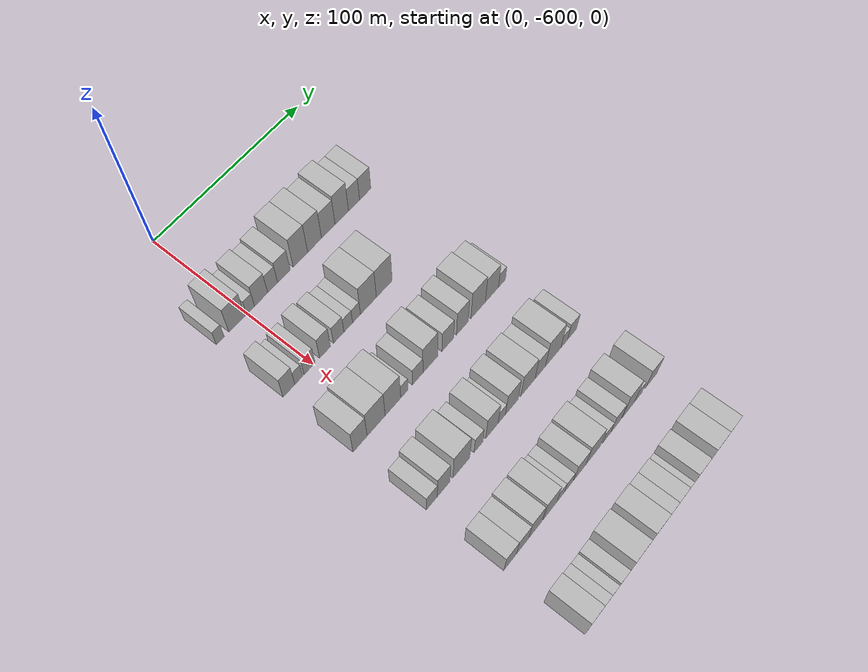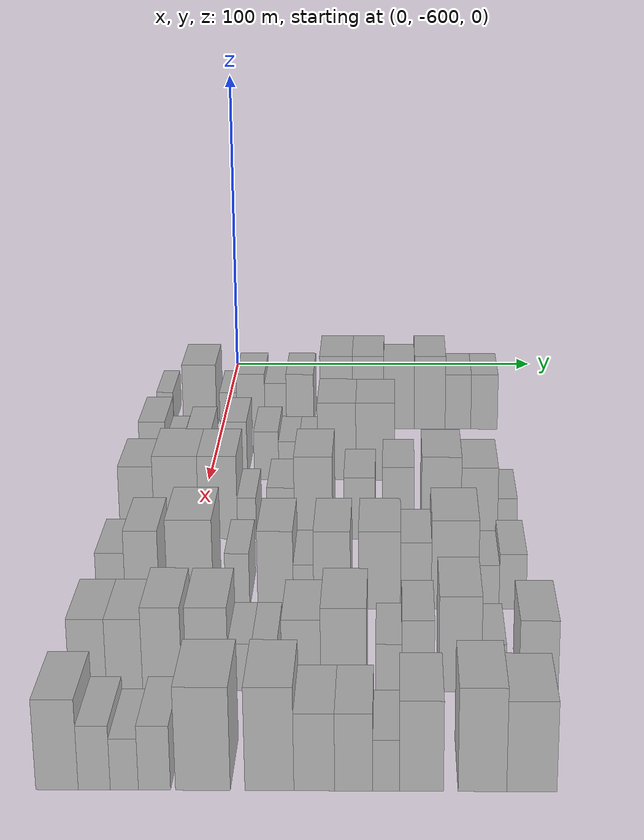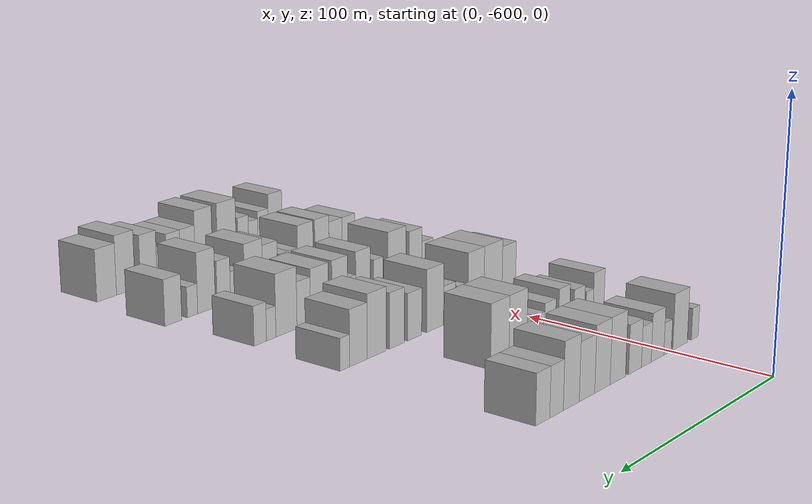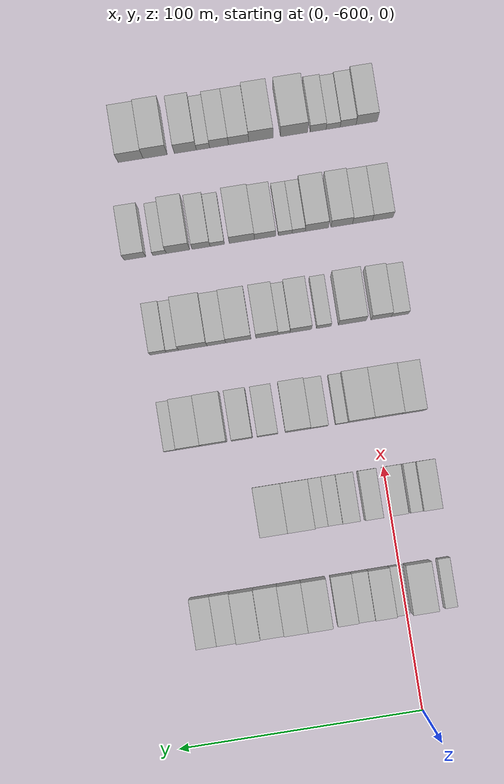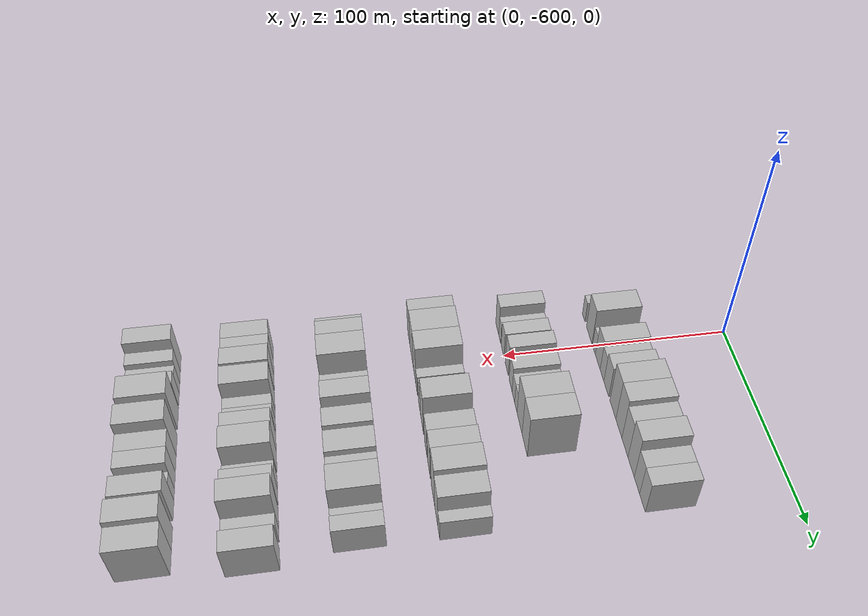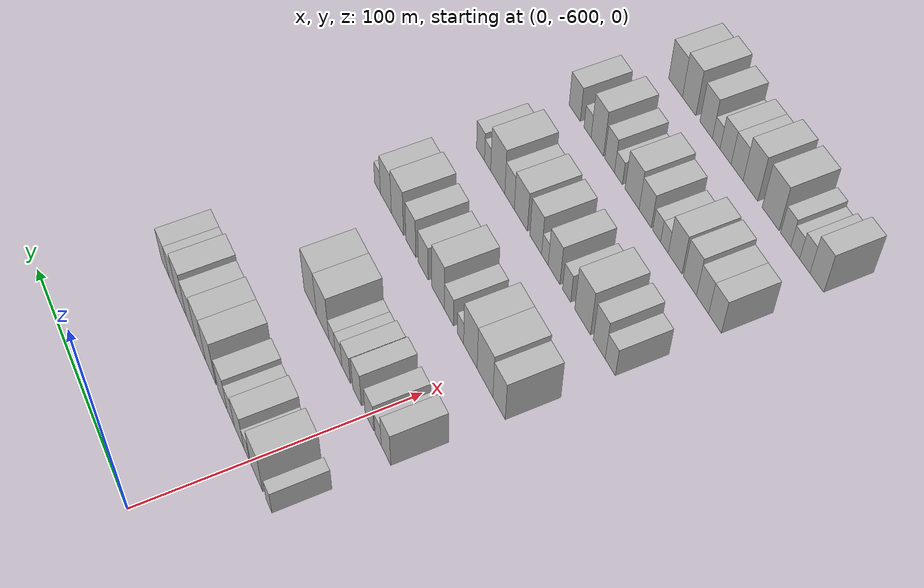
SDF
<sdf version="1.6">
 <world name="default">
  <model name="building_1">
   <static>1</static>
   <pose>50.0000 -617.4628 0 0.000000 0.000000 0.000000</pose>
   <link name="link">
    <pose>0 0 6.00 0 0 0</pose>
    <collision name="collision"><geometry><box><size>20.0000 5.0744 12.0000</size></box></geometry></collision>
    <visual name="visual">
     <cast_shadows>0</cast_shadows>
     <geometry><box><size>20.0000 5.0744 12.0000</size></box></geometry>
     <material>
      <script>
       <uri>model://HANNAS_wall/materials/scripts</uri>
       <uri>model://HANNAS_wall/materials/textures</uri>
       <name>vrc/HANNAS_wall</name>
      </script>
     </material>
    </visual>
   </link>
  </model>
  <model name="building_2">
   <static>1</static>
   <pose>50.0000 -606.7021 0 0.000000 0.000000 0.000000</pose>
   <link name="link">
    <pose>0 0 10.50 0 0 0</pose>
    <collision name="collision"><geometry><box><size>20.0000 10.4470 21.0000</size></box></geometry></collision>
    <visual name="visual">
     <cast_shadows>0</cast_shadows>
     <geometry><box><size>20.0000 10.4470 21.0000</size></box></geometry>
     <material>
      <script>
       <uri>model://HANNAS_wall/materials/scripts</uri>
       <uri>model://HANNAS_wall/materials/textures</uri>
       <name>vrc/HANNAS_wall</name>
      </script>
     </material>
    </visual>
   </link>
  </model>
  <model name="building_3">
   <static>1</static>
   <pose>50.0000 -597.8250 0 0.000000 0.000000 0.000000</pose>
   <link name="link">
    <pose>0 0 6.00 0 0 0</pose>
    <collision name="collision"><geometry><box><size>20.0000 5.3073 12.0000</size></box></geometry></collision>
    <visual name="visual">
     <cast_shadows>0</cast_shadows>
     <geometry><box><size>20.0000 5.3073 12.0000</size></box></geometry>
     <material>
      <script>
       <uri>model://HANNAS_wall/materials/scripts</uri>
       <uri>model://HANNAS_wall/materials/textures</uri>
       <name>vrc/HANNAS_wall</name>
      </script>
     </material>
    </visual>
   </link>
  </model>
  <model name="building_4">
   <static>1</static>
   <pose>50.0000 -590.8013 0 0.000000 0.000000 0.000000</pose>
   <link name="link">
    <pose>0 0 9.00 0 0 0</pose>
    <collision name="collision"><geometry><box><size>20.0000 8.7400 18.0000</size></box></geometry></collision>
    <visual name="visual">
     <cast_shadows>0</cast_shadows>
     <geometry><box><size>20.0000 8.7400 18.0000</size></box></geometry>
     <material>
      <script>
       <uri>model://HANNAS_wall/materials/scripts</uri>
       <uri>model://HANNAS_wall/materials/textures</uri>
       <name>vrc/HANNAS_wall</name>
      </script>
     </material>
    </visual>
   </link>
  </model>
  <model name="building_5">
   <static>1</static>
   <pose>50.0000 -583.0864 0 0.000000 0.000000 0.000000</pose>
   <link name="link">
    <pose>0 0 7.50 0 0 0</pose>
    <collision name="collision"><geometry><box><size>20.0000 6.6898 15.0000</size></box></geometry></collision>
    <visual name="visual">
     <cast_shadows>0</cast_shadows>
     <geometry><box><size>20.0000 6.6898 15.0000</size></box></geometry>
     <material>
      <script>
       <uri>model://HANNAS_wall/materials/scripts</uri>
       <uri>model://HANNAS_wall/materials/textures</uri>
       <name>vrc/HANNAS_wall</name>
      </script>
     </material>
    </visual>
   </link>
  </model>
  <model name="building_6">
   <static>1</static>
   <pose>50.0000 -575.4797 0 0.000000 0.000000 0.000000</pose>
   <link name="link">
    <pose>0 0 9.00 0 0 0</pose>
    <collision name="collision"><geometry><box><size>20.0000 8.5235 18.0000</size></box></geometry></collision>
    <visual name="visual">
     <cast_shadows>0</cast_shadows>
     <geometry><box><size>20.0000 8.5235 18.0000</size></box></geometry>
     <material>
      <script>
       <uri>model://HANNAS_wall/materials/scripts</uri>
       <uri>model://HANNAS_wall/materials/textures</uri>
       <name>vrc/HANNAS_wall</name>
      </script>
     </material>
    </visual>
   </link>
  </model>
  <model name="building_7">
   <static>1</static>
   <pose>50.0000 -564.1815 0 0.000000 0.000000 0.000000</pose>
   <link name="link">
    <pose>0 0 12.00 0 0 0</pose>
    <collision name="collision"><geometry><box><size>20.0000 10.0730 24.0000</size></box></geometry></collision>
    <visual name="visual">
     <cast_shadows>0</cast_shadows>
     <geometry><box><size>20.0000 10.0730 24.0000</size></box></geometry>
     <material>
      <script>
       <uri>model://HANNAS_wall/materials/scripts</uri>
       <uri>model://HANNAS_wall/materials/textures</uri>
       <name>vrc/HANNAS_wall</name>
      </script>
     </material>
    </visual>
   </link>
  </model>
  <model name="building_8">
   <static>1</static>
   <pose>50.0000 -554.2850 0 0.000000 0.000000 0.000000</pose>
   <link name="link">
    <pose>0 0 12.00 0 0 0</pose>
    <collision name="collision"><geometry><box><size>20.0000 9.7198 24.0000</size></box></geometry></collision>
    <visual name="visual">
     <cast_shadows>0</cast_shadows>
     <geometry><box><size>20.0000 9.7198 24.0000</size></box></geometry>
     <material>
      <script>
       <uri>model://HANNAS_wall/materials/scripts</uri>
       <uri>model://HANNAS_wall/materials/textures</uri>
       <name>vrc/HANNAS_wall</name>
      </script>
     </material>
    </visual>
   </link>
  </model>
  <model name="building_9">
   <static>1</static>
   <pose>50.0000 -544.6544 0 0.000000 0.000000 0.000000</pose>
   <link name="link">
    <pose>0 0 10.50 0 0 0</pose>
    <collision name="collision"><geometry><box><size>20.0000 9.5414 21.0000</size></box></geometry></collision>
    <visual name="visual">
     <cast_shadows>0</cast_shadows>
     <geometry><box><size>20.0000 9.5414 21.0000</size></box></geometry>
     <material>
      <script>
       <uri>model://HANNAS_wall/materials/scripts</uri>
       <uri>model://HANNAS_wall/materials/textures</uri>
       <name>vrc/HANNAS_wall</name>
      </script>
     </material>
    </visual>
   </link>
  </model>
  <model name="building_10">
   <static>1</static>
   <pose>50.0000 -535.0592 0 0.000000 0.000000 0.000000</pose>
   <link name="link">
    <pose>0 0 12.00 0 0 0</pose>
    <collision name="collision"><geometry><box><size>20.0000 9.6490 24.0000</size></box></geometry></collision>
    <visual name="visual">
     <cast_shadows>0</cast_shadows>
     <geometry><box><size>20.0000 9.6490 24.0000</size></box></geometry>
     <material>
      <script>
       <uri>model://HANNAS_wall/materials/scripts</uri>
       <uri>model://HANNAS_wall/materials/textures</uri>
       <name>vrc/HANNAS_wall</name>
      </script>
     </material>
    </visual>
   </link>
  </model>
  <model name="building_11">
   <static>1</static>
   <pose>50.0000 -526.2334 0 0.000000 0.000000 0.000000</pose>
   <link name="link">
    <pose>0 0 9.00 0 0 0</pose>
    <collision name="collision"><geometry><box><size>20.0000 8.0027 18.0000</size></box></geometry></collision>
    <visual name="visual">
     <cast_shadows>0</cast_shadows>
     <geometry><box><size>20.0000 8.0027 18.0000</size></box></geometry>
     <material>
      <script>
       <uri>model://HANNAS_wall/materials/scripts</uri>
       <uri>model://HANNAS_wall/materials/textures</uri>
       <name>vrc/HANNAS_wall</name>
      </script>
     </material>
    </visual>
   </link>
  </model>
  <model name="building_12">
   <static>1</static>
   <pose>50.0000 -518.0993 0 0.000000 0.000000 0.000000</pose>
   <link name="link">
    <pose>0 0 9.00 0 0 0</pose>
    <collision name="collision"><geometry><box><size>20.0000 8.2655 18.0000</size></box></geometry></collision>
    <visual name="visual">
     <cast_shadows>0</cast_shadows>
     <geometry><box><size>20.0000 8.2655 18.0000</size></box></geometry>
     <material>
      <script>
       <uri>model://HANNAS_wall/materials/scripts</uri>
       <uri>model://HANNAS_wall/materials/textures</uri>
       <name>vrc/HANNAS_wall</name>
      </script>
     </material>
    </visual>
   </link>
  </model>
  <model name="building_145">
   <static>1</static>
   <pose>90.0000 -616.1859 0 0.000000 0.000000 0.000000</pose>
   <link name="link">
    <pose>0 0 9.00 0 0 0</pose>
    <collision name="collision"><geometry><box><size>20.0000 7.6283 18.0000</size></box></geometry></collision>
    <visual name="visual">
     <cast_shadows>0</cast_shadows>
     <geometry><box><size>20.0000 7.6283 18.0000</size></box></geometry>
     <material>
      <script>
       <uri>model://HANNAS_wall/materials/scripts</uri>
       <uri>model://HANNAS_wall/materials/textures</uri>
       <name>vrc/HANNAS_wall</name>
      </script>
     </material>
    </visual>
   </link>
  </model>
  <model name="building_146">
   <static>1</static>
   <pose>90.0000 -609.8628 0 0.000000 0.000000 0.000000</pose>
   <link name="link">
    <pose>0 0 6.00 0 0 0</pose>
    <collision name="collision"><geometry><box><size>20.0000 5.0178 12.0000</size></box></geometry></collision>
    <visual name="visual">
     <cast_shadows>0</cast_shadows>
     <geometry><box><size>20.0000 5.0178 12.0000</size></box></geometry>
     <material>
      <script>
       <uri>model://HANNAS_wall/materials/scripts</uri>
       <uri>model://HANNAS_wall/materials/textures</uri>
       <name>vrc/HANNAS_wall</name>
      </script>
     </material>
    </visual>
   </link>
  </model>
  <model name="building_147">
   <static>1</static>
   <pose>90.0000 -602.7321 0 0.000000 0.000000 0.000000</pose>
   <link name="link">
    <pose>0 0 7.50 0 0 0</pose>
    <collision name="collision"><geometry><box><size>20.0000 7.2435 15.0000</size></box></geometry></collision>
    <visual name="visual">
     <cast_shadows>0</cast_shadows>
     <geometry><box><size>20.0000 7.2435 15.0000</size></box></geometry>
     <material>
      <script>
       <uri>model://HANNAS_wall/materials/scripts</uri>
       <uri>model://HANNAS_wall/materials/textures</uri>
       <name>vrc/HANNAS_wall</name>
      </script>
     </material>
    </visual>
   </link>
  </model>
  <model name="building_148">
   <static>1</static>
   <pose>90.0000 -592.4602 0 0.000000 0.000000 0.000000</pose>
   <link name="link">
    <pose>0 0 9.00 0 0 0</pose>
    <collision name="collision"><geometry><box><size>20.0000 7.3004 18.0000</size></box></geometry></collision>
    <visual name="visual">
     <cast_shadows>0</cast_shadows>
     <geometry><box><size>20.0000 7.3004 18.0000</size></box></geometry>
     <material>
      <script>
       <uri>model://HANNAS_wall/materials/scripts</uri>
       <uri>model://HANNAS_wall/materials/textures</uri>
       <name>vrc/HANNAS_wall</name>
      </script>
     </material>
    </visual>
   </link>
  </model>
  <model name="building_149">
   <static>1</static>
   <pose>90.0000 -583.2469 0 0.000000 0.000000 0.000000</pose>
   <link name="link">
    <pose>0 0 7.50 0 0 0</pose>
    <collision name="collision"><geometry><box><size>20.0000 7.1262 15.0000</size></box></geometry></collision>
    <visual name="visual">
     <cast_shadows>0</cast_shadows>
     <geometry><box><size>20.0000 7.1262 15.0000</size></box></geometry>
     <material>
      <script>
       <uri>model://HANNAS_wall/materials/scripts</uri>
       <uri>model://HANNAS_wall/materials/textures</uri>
       <name>vrc/HANNAS_wall</name>
      </script>
     </material>
    </visual>
   </link>
  </model>
  <model name="building_150">
   <static>1</static>
   <pose>90.0000 -576.7328 0 0.000000 0.000000 0.000000</pose>
   <link name="link">
    <pose>0 0 6.00 0 0 0</pose>
    <collision name="collision"><geometry><box><size>20.0000 5.9021 12.0000</size></box></geometry></collision>
    <visual name="visual">
     <cast_shadows>0</cast_shadows>
     <geometry><box><size>20.0000 5.9021 12.0000</size></box></geometry>
     <material>
      <script>
       <uri>model://HANNAS_wall/materials/scripts</uri>
       <uri>model://HANNAS_wall/materials/textures</uri>
       <name>vrc/HANNAS_wall</name>
      </script>
     </material>
    </visual>
   </link>
  </model>
  <model name="building_151">
   <static>1</static>
   <pose>90.0000 -571.0724 0 0.000000 0.000000 0.000000</pose>
   <link name="link">
    <pose>0 0 6.00 0 0 0</pose>
    <collision name="collision"><geometry><box><size>20.0000 5.4186 12.0000</size></box></geometry></collision>
    <visual name="visual">
     <cast_shadows>0</cast_shadows>
     <geometry><box><size>20.0000 5.4186 12.0000</size></box></geometry>
     <material>
      <script>
       <uri>model://HANNAS_wall/materials/scripts</uri>
       <uri>model://HANNAS_wall/materials/textures</uri>
       <name>vrc/HANNAS_wall</name>
      </script>
     </material>
    </visual>
   </link>
  </model>
  <model name="building_152">
   <static>1</static>
   <pose>90.0000 -562.8114 0 0.000000 0.000000 0.000000</pose>
   <link name="link">
    <pose>0 0 12.00 0 0 0</pose>
    <collision name="collision"><geometry><box><size>20.0000 11.1035 24.0000</size></box></geometry></collision>
    <visual name="visual">
     <cast_shadows>0</cast_shadows>
     <geometry><box><size>20.0000 11.1035 24.0000</size></box></geometry>
     <material>
      <script>
       <uri>model://HANNAS_wall/materials/scripts</uri>
       <uri>model://HANNAS_wall/materials/textures</uri>
       <name>vrc/HANNAS_wall</name>
      </script>
     </material>
    </visual>
   </link>
  </model>
  <model name="building_153">
   <static>1</static>
   <pose>90.0000 -551.6651 0 0.000000 0.000000 0.000000</pose>
   <link name="link">
    <pose>0 0 12.00 0 0 0</pose>
    <collision name="collision"><geometry><box><size>20.0000 11.1890 24.0000</size></box></geometry></collision>
    <visual name="visual">
     <cast_shadows>0</cast_shadows>
     <geometry><box><size>20.0000 11.1890 24.0000</size></box></geometry>
     <material>
      <script>
       <uri>model://HANNAS_wall/materials/scripts</uri>
       <uri>model://HANNAS_wall/materials/textures</uri>
       <name>vrc/HANNAS_wall</name>
      </script>
     </material>
    </visual>
   </link>
  </model>
  <model name="building_279">
   <static>1</static>
   <pose>130.0000 -615.3930 0 0.000000 0.000000 0.000000</pose>
   <link name="link">
    <pose>0 0 10.50 0 0 0</pose>
    <collision name="collision"><geometry><box><size>20.0000 9.2139 21.0000</size></box></geometry></collision>
    <visual name="visual">
     <cast_shadows>0</cast_shadows>
     <geometry><box><size>20.0000 9.2139 21.0000</size></box></geometry>
     <material>
      <script>
       <uri>model://HANNAS_wall/materials/scripts</uri>
       <uri>model://HANNAS_wall/materials/textures</uri>
       <name>vrc/HANNAS_wall</name>
      </script>
     </material>
    </visual>
   </link>
  </model>
  <model name="building_280">
   <static>1</static>
   <pose>130.0000 -604.7932 0 0.000000 0.000000 0.000000</pose>
   <link name="link">
    <pose>0 0 12.00 0 0 0</pose>
    <collision name="collision"><geometry><box><size>20.0000 11.9857 24.0000</size></box></geometry></collision>
    <visual name="visual">
     <cast_shadows>0</cast_shadows>
     <geometry><box><size>20.0000 11.9857 24.0000</size></box></geometry>
     <material>
      <script>
       <uri>model://HANNAS_wall/materials/scripts</uri>
       <uri>model://HANNAS_wall/materials/textures</uri>
       <name>vrc/HANNAS_wall</name>
      </script>
     </material>
    </visual>
   </link>
  </model>
  <model name="building_281">
   <static>1</static>
   <pose>130.0000 -593.5630 0 0.000000 0.000000 0.000000</pose>
   <link name="link">
    <pose>0 0 12.00 0 0 0</pose>
    <collision name="collision"><geometry><box><size>20.0000 10.4748 24.0000</size></box></geometry></collision>
    <visual name="visual">
     <cast_shadows>0</cast_shadows>
     <geometry><box><size>20.0000 10.4748 24.0000</size></box></geometry>
     <material>
      <script>
       <uri>model://HANNAS_wall/materials/scripts</uri>
       <uri>model://HANNAS_wall/materials/textures</uri>
       <name>vrc/HANNAS_wall</name>
      </script>
     </material>
    </visual>
   </link>
  </model>
  <model name="building_282">
   <static>1</static>
   <pose>130.0000 -585.8047 0 0.000000 0.000000 0.000000</pose>
   <link name="link">
    <pose>0 0 6.00 0 0 0</pose>
    <collision name="collision"><geometry><box><size>20.0000 5.0417 12.0000</size></box></geometry></collision>
    <visual name="visual">
     <cast_shadows>0</cast_shadows>
     <geometry><box><size>20.0000 5.0417 12.0000</size></box></geometry>
     <material>
      <script>
       <uri>model://HANNAS_wall/materials/scripts</uri>
       <uri>model://HANNAS_wall/materials/textures</uri>
       <name>vrc/HANNAS_wall</name>
      </script>
     </material>
    </visual>
   </link>
  </model>
  <model name="building_283">
   <static>1</static>
   <pose>130.0000 -576.6359 0 0.000000 0.000000 0.000000</pose>
   <link name="link">
    <pose>0 0 7.50 0 0 0</pose>
    <collision name="collision"><geometry><box><size>20.0000 7.2960 15.0000</size></box></geometry></collision>
    <visual name="visual">
     <cast_shadows>0</cast_shadows>
     <geometry><box><size>20.0000 7.2960 15.0000</size></box></geometry>
     <material>
      <script>
       <uri>model://HANNAS_wall/materials/scripts</uri>
       <uri>model://HANNAS_wall/materials/textures</uri>
       <name>vrc/HANNAS_wall</name>
      </script>
     </material>
    </visual>
   </link>
  </model>
  <model name="building_284">
   <static>1</static>
   <pose>130.0000 -567.8442 0 0.000000 0.000000 0.000000</pose>
   <link name="link">
    <pose>0 0 12.00 0 0 0</pose>
    <collision name="collision"><geometry><box><size>20.0000 10.2875 24.0000</size></box></geometry></collision>
    <visual name="visual">
     <cast_shadows>0</cast_shadows>
     <geometry><box><size>20.0000 10.2875 24.0000</size></box></geometry>
     <material>
      <script>
       <uri>model://HANNAS_wall/materials/scripts</uri>
       <uri>model://HANNAS_wall/materials/textures</uri>
       <name>vrc/HANNAS_wall</name>
      </script>
     </material>
    </visual>
   </link>
  </model>
  <model name="building_285">
   <static>1</static>
   <pose>130.0000 -555.5071 0 0.000000 0.000000 0.000000</pose>
   <link name="link">
    <pose>0 0 9.00 0 0 0</pose>
    <collision name="collision"><geometry><box><size>20.0000 8.3867 18.0000</size></box></geometry></collision>
    <visual name="visual">
     <cast_shadows>0</cast_shadows>
     <geometry><box><size>20.0000 8.3867 18.0000</size></box></geometry>
     <material>
      <script>
       <uri>model://HANNAS_wall/materials/scripts</uri>
       <uri>model://HANNAS_wall/materials/textures</uri>
       <name>vrc/HANNAS_wall</name>
      </script>
     </material>
    </visual>
   </link>
  </model>
  <model name="building_286">
   <static>1</static>
   <pose>130.0000 -545.0507 0 0.000000 0.000000 0.000000</pose>
   <link name="link">
    <pose>0 0 10.50 0 0 0</pose>
    <collision name="collision"><geometry><box><size>20.0000 8.5259 21.0000</size></box></geometry></collision>
    <visual name="visual">
     <cast_shadows>0</cast_shadows>
     <geometry><box><size>20.0000 8.5259 21.0000</size></box></geometry>
     <material>
      <script>
       <uri>model://HANNAS_wall/materials/scripts</uri>
       <uri>model://HANNAS_wall/materials/textures</uri>
       <name>vrc/HANNAS_wall</name>
      </script>
     </material>
    </visual>
   </link>
  </model>
  <model name="building_287">
   <static>1</static>
   <pose>130.0000 -533.4709 0 0.000000 0.000000 0.000000</pose>
   <link name="link">
    <pose>0 0 12.00 0 0 0</pose>
    <collision name="collision"><geometry><box><size>20.0000 10.6337 24.0000</size></box></geometry></collision>
    <visual name="visual">
     <cast_shadows>0</cast_shadows>
     <geometry><box><size>20.0000 10.6337 24.0000</size></box></geometry>
     <material>
      <script>
       <uri>model://HANNAS_wall/materials/scripts</uri>
       <uri>model://HANNAS_wall/materials/textures</uri>
       <name>vrc/HANNAS_wall</name>
      </script>
     </material>
    </visual>
   </link>
  </model>
  <model name="building_288">
   <static>1</static>
   <pose>130.0000 -523.2540 0 0.000000 0.000000 0.000000</pose>
   <link name="link">
    <pose>0 0 10.50 0 0 0</pose>
    <collision name="collision"><geometry><box><size>20.0000 9.8002 21.0000</size></box></geometry></collision>
    <visual name="visual">
     <cast_shadows>0</cast_shadows>
     <geometry><box><size>20.0000 9.8002 21.0000</size></box></geometry>
     <material>
      <script>
       <uri>model://HANNAS_wall/materials/scripts</uri>
       <uri>model://HANNAS_wall/materials/textures</uri>
       <name>vrc/HANNAS_wall</name>
      </script>
     </material>
    </visual>
   </link>
  </model>
  <model name="building_289">
   <static>1</static>
   <pose>130.0000 -515.7482 0 0.000000 0.000000 0.000000</pose>
   <link name="link">
    <pose>0 0 6.00 0 0 0</pose>
    <collision name="collision"><geometry><box><size>20.0000 5.2114 12.0000</size></box></geometry></collision>
    <visual name="visual">
     <cast_shadows>0</cast_shadows>
     <geometry><box><size>20.0000 5.2114 12.0000</size></box></geometry>
     <material>
      <script>
       <uri>model://HANNAS_wall/materials/scripts</uri>
       <uri>model://HANNAS_wall/materials/textures</uri>
       <name>vrc/HANNAS_wall</name>
      </script>
     </material>
    </visual>
   </link>
  </model>
  <model name="building_413">
   <static>1</static>
   <pose>170.0000 -616.4345 0 0.000000 0.000000 0.000000</pose>
   <link name="link">
    <pose>0 0 7.50 0 0 0</pose>
    <collision name="collision"><geometry><box><size>20.0000 7.1311 15.0000</size></box></geometry></collision>
    <visual name="visual">
     <cast_shadows>0</cast_shadows>
     <geometry><box><size>20.0000 7.1311 15.0000</size></box></geometry>
     <material>
      <script>
       <uri>model://HANNAS_wall/materials/scripts</uri>
       <uri>model://HANNAS_wall/materials/textures</uri>
       <name>vrc/HANNAS_wall</name>
      </script>
     </material>
    </visual>
   </link>
  </model>
  <model name="building_414">
   <static>1</static>
   <pose>170.0000 -608.6583 0 0.000000 0.000000 0.000000</pose>
   <link name="link">
    <pose>0 0 10.50 0 0 0</pose>
    <collision name="collision"><geometry><box><size>20.0000 8.4214 21.0000</size></box></geometry></collision>
    <visual name="visual">
     <cast_shadows>0</cast_shadows>
     <geometry><box><size>20.0000 8.4214 21.0000</size></box></geometry>
     <material>
      <script>
       <uri>model://HANNAS_wall/materials/scripts</uri>
       <uri>model://HANNAS_wall/materials/textures</uri>
       <name>vrc/HANNAS_wall</name>
      </script>
     </material>
    </visual>
   </link>
  </model>
  <model name="building_415">
   <static>1</static>
   <pose>170.0000 -596.7276 0 0.000000 0.000000 0.000000</pose>
   <link name="link">
    <pose>0 0 12.00 0 0 0</pose>
    <collision name="collision"><geometry><box><size>20.0000 11.4401 24.0000</size></box></geometry></collision>
    <visual name="visual">
     <cast_shadows>0</cast_shadows>
     <geometry><box><size>20.0000 11.4401 24.0000</size></box></geometry>
     <material>
      <script>
       <uri>model://HANNAS_wall/materials/scripts</uri>
       <uri>model://HANNAS_wall/materials/textures</uri>
       <name>vrc/HANNAS_wall</name>
      </script>
     </material>
    </visual>
   </link>
  </model>
  <model name="building_416">
   <static>1</static>
   <pose>170.0000 -585.0037 0 0.000000 0.000000 0.000000</pose>
   <link name="link">
    <pose>0 0 7.50 0 0 0</pose>
    <collision name="collision"><geometry><box><size>20.0000 6.0077 15.0000</size></box></geometry></collision>
    <visual name="visual">
     <cast_shadows>0</cast_shadows>
     <geometry><box><size>20.0000 6.0077 15.0000</size></box></geometry>
     <material>
      <script>
       <uri>model://HANNAS_wall/materials/scripts</uri>
       <uri>model://HANNAS_wall/materials/textures</uri>
       <name>vrc/HANNAS_wall</name>
      </script>
     </material>
    </visual>
   </link>
  </model>
  <model name="building_417">
   <static>1</static>
   <pose>170.0000 -575.5619 0 0.000000 0.000000 0.000000</pose>
   <link name="link">
    <pose>0 0 10.50 0 0 0</pose>
    <collision name="collision"><geometry><box><size>20.0000 8.8758 21.0000</size></box></geometry></collision>
    <visual name="visual">
     <cast_shadows>0</cast_shadows>
     <geometry><box><size>20.0000 8.8758 21.0000</size></box></geometry>
     <material>
      <script>
       <uri>model://HANNAS_wall/materials/scripts</uri>
       <uri>model://HANNAS_wall/materials/textures</uri>
       <name>vrc/HANNAS_wall</name>
      </script>
     </material>
    </visual>
   </link>
  </model>
  <model name="building_418">
   <static>1</static>
   <pose>170.0000 -568.6180 0 0.000000 0.000000 0.000000</pose>
   <link name="link">
    <pose>0 0 6.00 0 0 0</pose>
    <collision name="collision"><geometry><box><size>20.0000 5.0122 12.0000</size></box></geometry></collision>
    <visual name="visual">
     <cast_shadows>0</cast_shadows>
     <geometry><box><size>20.0000 5.0122 12.0000</size></box></geometry>
     <material>
      <script>
       <uri>model://HANNAS_wall/materials/scripts</uri>
       <uri>model://HANNAS_wall/materials/textures</uri>
       <name>vrc/HANNAS_wall</name>
      </script>
     </material>
    </visual>
   </link>
  </model>
  <model name="building_419">
   <static>1</static>
   <pose>170.0000 -561.5485 0 0.000000 0.000000 0.000000</pose>
   <link name="link">
    <pose>0 0 10.50 0 0 0</pose>
    <collision name="collision"><geometry><box><size>20.0000 9.1268 21.0000</size></box></geometry></collision>
    <visual name="visual">
     <cast_shadows>0</cast_shadows>
     <geometry><box><size>20.0000 9.1268 21.0000</size></box></geometry>
     <material>
      <script>
       <uri>model://HANNAS_wall/materials/scripts</uri>
       <uri>model://HANNAS_wall/materials/textures</uri>
       <name>vrc/HANNAS_wall</name>
      </script>
     </material>
    </visual>
   </link>
  </model>
  <model name="building_420">
   <static>1</static>
   <pose>170.0000 -549.7839 0 0.000000 0.000000 0.000000</pose>
   <link name="link">
    <pose>0 0 10.50 0 0 0</pose>
    <collision name="collision"><geometry><box><size>20.0000 10.4023 21.0000</size></box></geometry></collision>
    <visual name="visual">
     <cast_shadows>0</cast_shadows>
     <geometry><box><size>20.0000 10.4023 21.0000</size></box></geometry>
     <material>
      <script>
       <uri>model://HANNAS_wall/materials/scripts</uri>
       <uri>model://HANNAS_wall/materials/textures</uri>
       <name>vrc/HANNAS_wall</name>
      </script>
     </material>
    </visual>
   </link>
  </model>
  <model name="building_421">
   <static>1</static>
   <pose>170.0000 -540.7474 0 0.000000 0.000000 0.000000</pose>
   <link name="link">
    <pose>0 0 9.00 0 0 0</pose>
    <collision name="collision"><geometry><box><size>20.0000 7.6707 18.0000</size></box></geometry></collision>
    <visual name="visual">
     <cast_shadows>0</cast_shadows>
     <geometry><box><size>20.0000 7.6707 18.0000</size></box></geometry>
     <material>
      <script>
       <uri>model://HANNAS_wall/materials/scripts</uri>
       <uri>model://HANNAS_wall/materials/textures</uri>
       <name>vrc/HANNAS_wall</name>
      </script>
     </material>
    </visual>
   </link>
  </model>
  <model name="building_422">
   <static>1</static>
   <pose>170.0000 -531.0800 0 0.000000 0.000000 0.000000</pose>
   <link name="link">
    <pose>0 0 12.00 0 0 0</pose>
    <collision name="collision"><geometry><box><size>20.0000 11.6641 24.0000</size></box></geometry></collision>
    <visual name="visual">
     <cast_shadows>0</cast_shadows>
     <geometry><box><size>20.0000 11.6641 24.0000</size></box></geometry>
     <material>
      <script>
       <uri>model://HANNAS_wall/materials/scripts</uri>
       <uri>model://HANNAS_wall/materials/textures</uri>
       <name>vrc/HANNAS_wall</name>
      </script>
     </material>
    </visual>
   </link>
  </model>
  <model name="building_423">
   <static>1</static>
   <pose>170.0000 -522.6973 0 0.000000 0.000000 0.000000</pose>
   <link name="link">
    <pose>0 0 6.00 0 0 0</pose>
    <collision name="collision"><geometry><box><size>20.0000 5.1013 12.0000</size></box></geometry></collision>
    <visual name="visual">
     <cast_shadows>0</cast_shadows>
     <geometry><box><size>20.0000 5.1013 12.0000</size></box></geometry>
     <material>
      <script>
       <uri>model://HANNAS_wall/materials/scripts</uri>
       <uri>model://HANNAS_wall/materials/textures</uri>
       <name>vrc/HANNAS_wall</name>
      </script>
     </material>
    </visual>
   </link>
  </model>
  <model name="building_424">
   <static>1</static>
   <pose>170.0000 -516.7833 0 0.000000 0.000000 0.000000</pose>
   <link name="link">
    <pose>0 0 7.50 0 0 0</pose>
    <collision name="collision"><geometry><box><size>20.0000 6.7266 15.0000</size></box></geometry></collision>
    <visual name="visual">
     <cast_shadows>0</cast_shadows>
     <geometry><box><size>20.0000 6.7266 15.0000</size></box></geometry>
     <material>
      <script>
       <uri>model://HANNAS_wall/materials/scripts</uri>
       <uri>model://HANNAS_wall/materials/textures</uri>
       <name>vrc/HANNAS_wall</name>
      </script>
     </material>
    </visual>
   </link>
  </model>
  <model name="building_553">
   <static>1</static>
   <pose>210.0000 -615.7578 0 0.000000 0.000000 0.000000</pose>
   <link name="link">
    <pose>0 0 9.00 0 0 0</pose>
    <collision name="collision"><geometry><box><size>20.0000 8.4844 18.0000</size></box></geometry></collision>
    <visual name="visual">
     <cast_shadows>0</cast_shadows>
     <geometry><box><size>20.0000 8.4844 18.0000</size></box></geometry>
     <material>
      <script>
       <uri>model://HANNAS_wall/materials/scripts</uri>
       <uri>model://HANNAS_wall/materials/textures</uri>
       <name>vrc/HANNAS_wall</name>
      </script>
     </material>
    </visual>
   </link>
  </model>
  <model name="building_554">
   <static>1</static>
   <pose>210.0000 -607.3965 0 0.000000 0.000000 0.000000</pose>
   <link name="link">
    <pose>0 0 9.00 0 0 0</pose>
    <collision name="collision"><geometry><box><size>20.0000 8.2383 18.0000</size></box></geometry></collision>
    <visual name="visual">
     <cast_shadows>0</cast_shadows>
     <geometry><box><size>20.0000 8.2383 18.0000</size></box></geometry>
     <material>
      <script>
       <uri>model://HANNAS_wall/materials/scripts</uri>
       <uri>model://HANNAS_wall/materials/textures</uri>
       <name>vrc/HANNAS_wall</name>
      </script>
     </material>
    </visual>
   </link>
  </model>
  <model name="building_555">
   <static>1</static>
   <pose>210.0000 -598.8147 0 0.000000 0.000000 0.000000</pose>
   <link name="link">
    <pose>0 0 10.50 0 0 0</pose>
    <collision name="collision"><geometry><box><size>20.0000 8.9252 21.0000</size></box></geometry></collision>
    <visual name="visual">
     <cast_shadows>0</cast_shadows>
     <geometry><box><size>20.0000 8.9252 21.0000</size></box></geometry>
     <material>
      <script>
       <uri>model://HANNAS_wall/materials/scripts</uri>
       <uri>model://HANNAS_wall/materials/textures</uri>
       <name>vrc/HANNAS_wall</name>
      </script>
     </material>
    </visual>
   </link>
  </model>
  <model name="building_556">
   <static>1</static>
   <pose>210.0000 -588.5671 0 0.000000 0.000000 0.000000</pose>
   <link name="link">
    <pose>0 0 10.50 0 0 0</pose>
    <collision name="collision"><geometry><box><size>20.0000 9.5700 21.0000</size></box></geometry></collision>
    <visual name="visual">
     <cast_shadows>0</cast_shadows>
     <geometry><box><size>20.0000 9.5700 21.0000</size></box></geometry>
     <material>
      <script>
       <uri>model://HANNAS_wall/materials/scripts</uri>
       <uri>model://HANNAS_wall/materials/textures</uri>
       <name>vrc/HANNAS_wall</name>
      </script>
     </material>
    </visual>
   </link>
  </model>
  <model name="building_557">
   <static>1</static>
   <pose>210.0000 -581.0700 0 0.000000 0.000000 0.000000</pose>
   <link name="link">
    <pose>0 0 6.00 0 0 0</pose>
    <collision name="collision"><geometry><box><size>20.0000 5.4243 12.0000</size></box></geometry></collision>
    <visual name="visual">
     <cast_shadows>0</cast_shadows>
     <geometry><box><size>20.0000 5.4243 12.0000</size></box></geometry>
     <material>
      <script>
       <uri>model://HANNAS_wall/materials/scripts</uri>
       <uri>model://HANNAS_wall/materials/textures</uri>
       <name>vrc/HANNAS_wall</name>
      </script>
     </material>
    </visual>
   </link>
  </model>
  <model name="building_558">
   <static>1</static>
   <pose>210.0000 -575.4930 0 0.000000 0.000000 0.000000</pose>
   <link name="link">
    <pose>0 0 6.00 0 0 0</pose>
    <collision name="collision"><geometry><box><size>20.0000 5.7296 12.0000</size></box></geometry></collision>
    <visual name="visual">
     <cast_shadows>0</cast_shadows>
     <geometry><box><size>20.0000 5.7296 12.0000</size></box></geometry>
     <material>
      <script>
       <uri>model://HANNAS_wall/materials/scripts</uri>
       <uri>model://HANNAS_wall/materials/textures</uri>
       <name>vrc/HANNAS_wall</name>
      </script>
     </material>
    </visual>
   </link>
  </model>
  <model name="building_559">
   <static>1</static>
   <pose>210.0000 -567.2155 0 0.000000 0.000000 0.000000</pose>
   <link name="link">
    <pose>0 0 9.00 0 0 0</pose>
    <collision name="collision"><geometry><box><size>20.0000 8.8254 18.0000</size></box></geometry></collision>
    <visual name="visual">
     <cast_shadows>0</cast_shadows>
     <geometry><box><size>20.0000 8.8254 18.0000</size></box></geometry>
     <material>
      <script>
       <uri>model://HANNAS_wall/materials/scripts</uri>
       <uri>model://HANNAS_wall/materials/textures</uri>
       <name>vrc/HANNAS_wall</name>
      </script>
     </material>
    </visual>
   </link>
  </model>
  <model name="building_560">
   <static>1</static>
   <pose>210.0000 -557.5955 0 0.000000 0.000000 0.000000</pose>
   <link name="link">
    <pose>0 0 10.50 0 0 0</pose>
    <collision name="collision"><geometry><box><size>20.0000 10.4148 21.0000</size></box></geometry></collision>
    <visual name="visual">
     <cast_shadows>0</cast_shadows>
     <geometry><box><size>20.0000 10.4148 21.0000</size></box></geometry>
     <material>
      <script>
       <uri>model://HANNAS_wall/materials/scripts</uri>
       <uri>model://HANNAS_wall/materials/textures</uri>
       <name>vrc/HANNAS_wall</name>
      </script>
     </material>
    </visual>
   </link>
  </model>
  <model name="building_561">
   <static>1</static>
   <pose>210.0000 -547.4088 0 0.000000 0.000000 0.000000</pose>
   <link name="link">
    <pose>0 0 6.00 0 0 0</pose>
    <collision name="collision"><geometry><box><size>20.0000 5.9585 12.0000</size></box></geometry></collision>
    <visual name="visual">
     <cast_shadows>0</cast_shadows>
     <geometry><box><size>20.0000 5.9585 12.0000</size></box></geometry>
     <material>
      <script>
       <uri>model://HANNAS_wall/materials/scripts</uri>
       <uri>model://HANNAS_wall/materials/textures</uri>
       <name>vrc/HANNAS_wall</name>
      </script>
     </material>
    </visual>
   </link>
  </model>
  <model name="building_562">
   <static>1</static>
   <pose>210.0000 -540.7296 0 0.000000 0.000000 0.000000</pose>
   <link name="link">
    <pose>0 0 9.00 0 0 0</pose>
    <collision name="collision"><geometry><box><size>20.0000 7.4000 18.0000</size></box></geometry></collision>
    <visual name="visual">
     <cast_shadows>0</cast_shadows>
     <geometry><box><size>20.0000 7.4000 18.0000</size></box></geometry>
     <material>
      <script>
       <uri>model://HANNAS_wall/materials/scripts</uri>
       <uri>model://HANNAS_wall/materials/textures</uri>
       <name>vrc/HANNAS_wall</name>
      </script>
     </material>
    </visual>
   </link>
  </model>
  <model name="building_563">
   <static>1</static>
   <pose>210.0000 -531.2011 0 0.000000 0.000000 0.000000</pose>
   <link name="link">
    <pose>0 0 12.00 0 0 0</pose>
    <collision name="collision"><geometry><box><size>20.0000 9.6568 24.0000</size></box></geometry></collision>
    <visual name="visual">
     <cast_shadows>0</cast_shadows>
     <geometry><box><size>20.0000 9.6568 24.0000</size></box></geometry>
     <material>
      <script>
       <uri>model://HANNAS_wall/materials/scripts</uri>
       <uri>model://HANNAS_wall/materials/textures</uri>
       <name>vrc/HANNAS_wall</name>
      </script>
     </material>
    </visual>
   </link>
  </model>
  <model name="building_564">
   <static>1</static>
   <pose>210.0000 -523.5970 0 0.000000 0.000000 0.000000</pose>
   <link name="link">
    <pose>0 0 6.00 0 0 0</pose>
    <collision name="collision"><geometry><box><size>20.0000 5.5515 12.0000</size></box></geometry></collision>
    <visual name="visual">
     <cast_shadows>0</cast_shadows>
     <geometry><box><size>20.0000 5.5515 12.0000</size></box></geometry>
     <material>
      <script>
       <uri>model://HANNAS_wall/materials/scripts</uri>
       <uri>model://HANNAS_wall/materials/textures</uri>
       <name>vrc/HANNAS_wall</name>
      </script>
     </material>
    </visual>
   </link>
  </model>
  <model name="building_565">
   <static>1</static>
   <pose>210.0000 -513.3769 0 0.000000 0.000000 0.000000</pose>
   <link name="link">
    <pose>0 0 9.00 0 0 0</pose>
    <collision name="collision"><geometry><box><size>20.0000 8.8887 18.0000</size></box></geometry></collision>
    <visual name="visual">
     <cast_shadows>0</cast_shadows>
     <geometry><box><size>20.0000 8.8887 18.0000</size></box></geometry>
     <material>
      <script>
       <uri>model://HANNAS_wall/materials/scripts</uri>
       <uri>model://HANNAS_wall/materials/textures</uri>
       <name>vrc/HANNAS_wall</name>
      </script>
     </material>
    </visual>
   </link>
  </model>
  <model name="building_695">
   <static>1</static>
   <pose>250.0000 -615.6165 0 0.000000 0.000000 0.000000</pose>
   <link name="link">
    <pose>0 0 10.50 0 0 0</pose>
    <collision name="collision"><geometry><box><size>20.0000 8.7670 21.0000</size></box></geometry></collision>
    <visual name="visual">
     <cast_shadows>0</cast_shadows>
     <geometry><box><size>20.0000 8.7670 21.0000</size></box></geometry>
     <material>
      <script>
       <uri>model://HANNAS_wall/materials/scripts</uri>
       <uri>model://HANNAS_wall/materials/textures</uri>
       <name>vrc/HANNAS_wall</name>
      </script>
     </material>
    </visual>
   </link>
  </model>
  <model name="building_696">
   <static>1</static>
   <pose>250.0000 -607.9226 0 0.000000 0.000000 0.000000</pose>
   <link name="link">
    <pose>0 0 7.50 0 0 0</pose>
    <collision name="collision"><geometry><box><size>20.0000 6.6208 15.0000</size></box></geometry></collision>
    <visual name="visual">
     <cast_shadows>0</cast_shadows>
     <geometry><box><size>20.0000 6.6208 15.0000</size></box></geometry>
     <material>
      <script>
       <uri>model://HANNAS_wall/materials/scripts</uri>
       <uri>model://HANNAS_wall/materials/textures</uri>
       <name>vrc/HANNAS_wall</name>
      </script>
     </material>
    </visual>
   </link>
  </model>
  <model name="building_697">
   <static>1</static>
   <pose>250.0000 -601.7176 0 0.000000 0.000000 0.000000</pose>
   <link name="link">
    <pose>0 0 6.00 0 0 0</pose>
    <collision name="collision"><geometry><box><size>20.0000 5.7892 12.0000</size></box></geometry></collision>
    <visual name="visual">
     <cast_shadows>0</cast_shadows>
     <geometry><box><size>20.0000 5.7892 12.0000</size></box></geometry>
     <material>
      <script>
       <uri>model://HANNAS_wall/materials/scripts</uri>
       <uri>model://HANNAS_wall/materials/textures</uri>
       <name>vrc/HANNAS_wall</name>
      </script>
     </material>
    </visual>
   </link>
  </model>
  <model name="building_698">
   <static>1</static>
   <pose>250.0000 -595.5041 0 0.000000 0.000000 0.000000</pose>
   <link name="link">
    <pose>0 0 7.50 0 0 0</pose>
    <collision name="collision"><geometry><box><size>20.0000 6.6376 15.0000</size></box></geometry></collision>
    <visual name="visual">
     <cast_shadows>0</cast_shadows>
     <geometry><box><size>20.0000 6.6376 15.0000</size></box></geometry>
     <material>
      <script>
       <uri>model://HANNAS_wall/materials/scripts</uri>
       <uri>model://HANNAS_wall/materials/textures</uri>
       <name>vrc/HANNAS_wall</name>
      </script>
     </material>
    </visual>
   </link>
  </model>
  <model name="building_699">
   <static>1</static>
   <pose>250.0000 -585.5298 0 0.000000 0.000000 0.000000</pose>
   <link name="link">
    <pose>0 0 12.00 0 0 0</pose>
    <collision name="collision"><geometry><box><size>20.0000 11.3111 24.0000</size></box></geometry></collision>
    <visual name="visual">
     <cast_shadows>0</cast_shadows>
     <geometry><box><size>20.0000 11.3111 24.0000</size></box></geometry>
     <material>
      <script>
       <uri>model://HANNAS_wall/materials/scripts</uri>
       <uri>model://HANNAS_wall/materials/textures</uri>
       <name>vrc/HANNAS_wall</name>
      </script>
     </material>
    </visual>
   </link>
  </model>
  <model name="building_700">
   <static>1</static>
   <pose>250.0000 -571.8258 0 0.000000 0.000000 0.000000</pose>
   <link name="link">
    <pose>0 0 12.00 0 0 0</pose>
    <collision name="collision"><geometry><box><size>20.0000 10.0967 24.0000</size></box></geometry></collision>
    <visual name="visual">
     <cast_shadows>0</cast_shadows>
     <geometry><box><size>20.0000 10.0967 24.0000</size></box></geometry>
     <material>
      <script>
       <uri>model://HANNAS_wall/materials/scripts</uri>
       <uri>model://HANNAS_wall/materials/textures</uri>
       <name>vrc/HANNAS_wall</name>
      </script>
     </material>
    </visual>
   </link>
  </model>
  <model name="building_701">
   <static>1</static>
   <pose>250.0000 -562.5846 0 0.000000 0.000000 0.000000</pose>
   <link name="link">
    <pose>0 0 9.00 0 0 0</pose>
    <collision name="collision"><geometry><box><size>20.0000 8.3857 18.0000</size></box></geometry></collision>
    <visual name="visual">
     <cast_shadows>0</cast_shadows>
     <geometry><box><size>20.0000 8.3857 18.0000</size></box></geometry>
     <material>
      <script>
       <uri>model://HANNAS_wall/materials/scripts</uri>
       <uri>model://HANNAS_wall/materials/textures</uri>
       <name>vrc/HANNAS_wall</name>
      </script>
     </material>
    </visual>
   </link>
  </model>
  <model name="building_702">
   <static>1</static>
   <pose>250.0000 -554.4738 0 0.000000 0.000000 0.000000</pose>
   <link name="link">
    <pose>0 0 9.00 0 0 0</pose>
    <collision name="collision"><geometry><box><size>20.0000 7.8359 18.0000</size></box></geometry></collision>
    <visual name="visual">
     <cast_shadows>0</cast_shadows>
     <geometry><box><size>20.0000 7.8359 18.0000</size></box></geometry>
     <material>
      <script>
       <uri>model://HANNAS_wall/materials/scripts</uri>
       <uri>model://HANNAS_wall/materials/textures</uri>
       <name>vrc/HANNAS_wall</name>
      </script>
     </material>
    </visual>
   </link>
  </model>
  <model name="building_703">
   <static>1</static>
   <pose>250.0000 -547.8125 0 0.000000 0.000000 0.000000</pose>
   <link name="link">
    <pose>0 0 6.00 0 0 0</pose>
    <collision name="collision"><geometry><box><size>20.0000 5.4868 12.0000</size></box></geometry></collision>
    <visual name="visual">
     <cast_shadows>0</cast_shadows>
     <geometry><box><size>20.0000 5.4868 12.0000</size></box></geometry>
     <material>
      <script>
       <uri>model://HANNAS_wall/materials/scripts</uri>
       <uri>model://HANNAS_wall/materials/textures</uri>
       <name>vrc/HANNAS_wall</name>
      </script>
     </material>
    </visual>
   </link>
  </model>
  <model name="building_704">
   <static>1</static>
   <pose>250.0000 -540.5290 0 0.000000 0.000000 0.000000</pose>
   <link name="link">
    <pose>0 0 10.50 0 0 0</pose>
    <collision name="collision"><geometry><box><size>20.0000 9.0802 21.0000</size></box></geometry></collision>
    <visual name="visual">
     <cast_shadows>0</cast_shadows>
     <geometry><box><size>20.0000 9.0802 21.0000</size></box></geometry>
     <material>
      <script>
       <uri>model://HANNAS_wall/materials/scripts</uri>
       <uri>model://HANNAS_wall/materials/textures</uri>
       <name>vrc/HANNAS_wall</name>
      </script>
     </material>
    </visual>
   </link>
  </model>
  <model name="building_705">
   <static>1</static>
   <pose>250.0000 -527.9947 0 0.000000 0.000000 0.000000</pose>
   <link name="link">
    <pose>0 0 12.00 0 0 0</pose>
    <collision name="collision"><geometry><box><size>20.0000 9.9885 24.0000</size></box></geometry></collision>
    <visual name="visual">
     <cast_shadows>0</cast_shadows>
     <geometry><box><size>20.0000 9.9885 24.0000</size></box></geometry>
     <material>
      <script>
       <uri>model://HANNAS_wall/materials/scripts</uri>
       <uri>model://HANNAS_wall/materials/textures</uri>
       <name>vrc/HANNAS_wall</name>
      </script>
     </material>
    </visual>
   </link>
  </model>
  <model name="building_706">
   <static>1</static>
   <pose>250.0000 -517.8300 0 0.000000 0.000000 0.000000</pose>
   <link name="link">
    <pose>0 0 10.50 0 0 0</pose>
    <collision name="collision"><geometry><box><size>20.0000 10.3408 21.0000</size></box></geometry></collision>
    <visual name="visual">
     <cast_shadows>0</cast_shadows>
     <geometry><box><size>20.0000 10.3408 21.0000</size></box></geometry>
     <material>
      <script>
       <uri>model://HANNAS_wall/materials/scripts</uri>
       <uri>model://HANNAS_wall/materials/textures</uri>
       <name>vrc/HANNAS_wall</name>
      </script>
     </material>
    </visual>
   </link>
  </model>
 </world>
</sdf>
